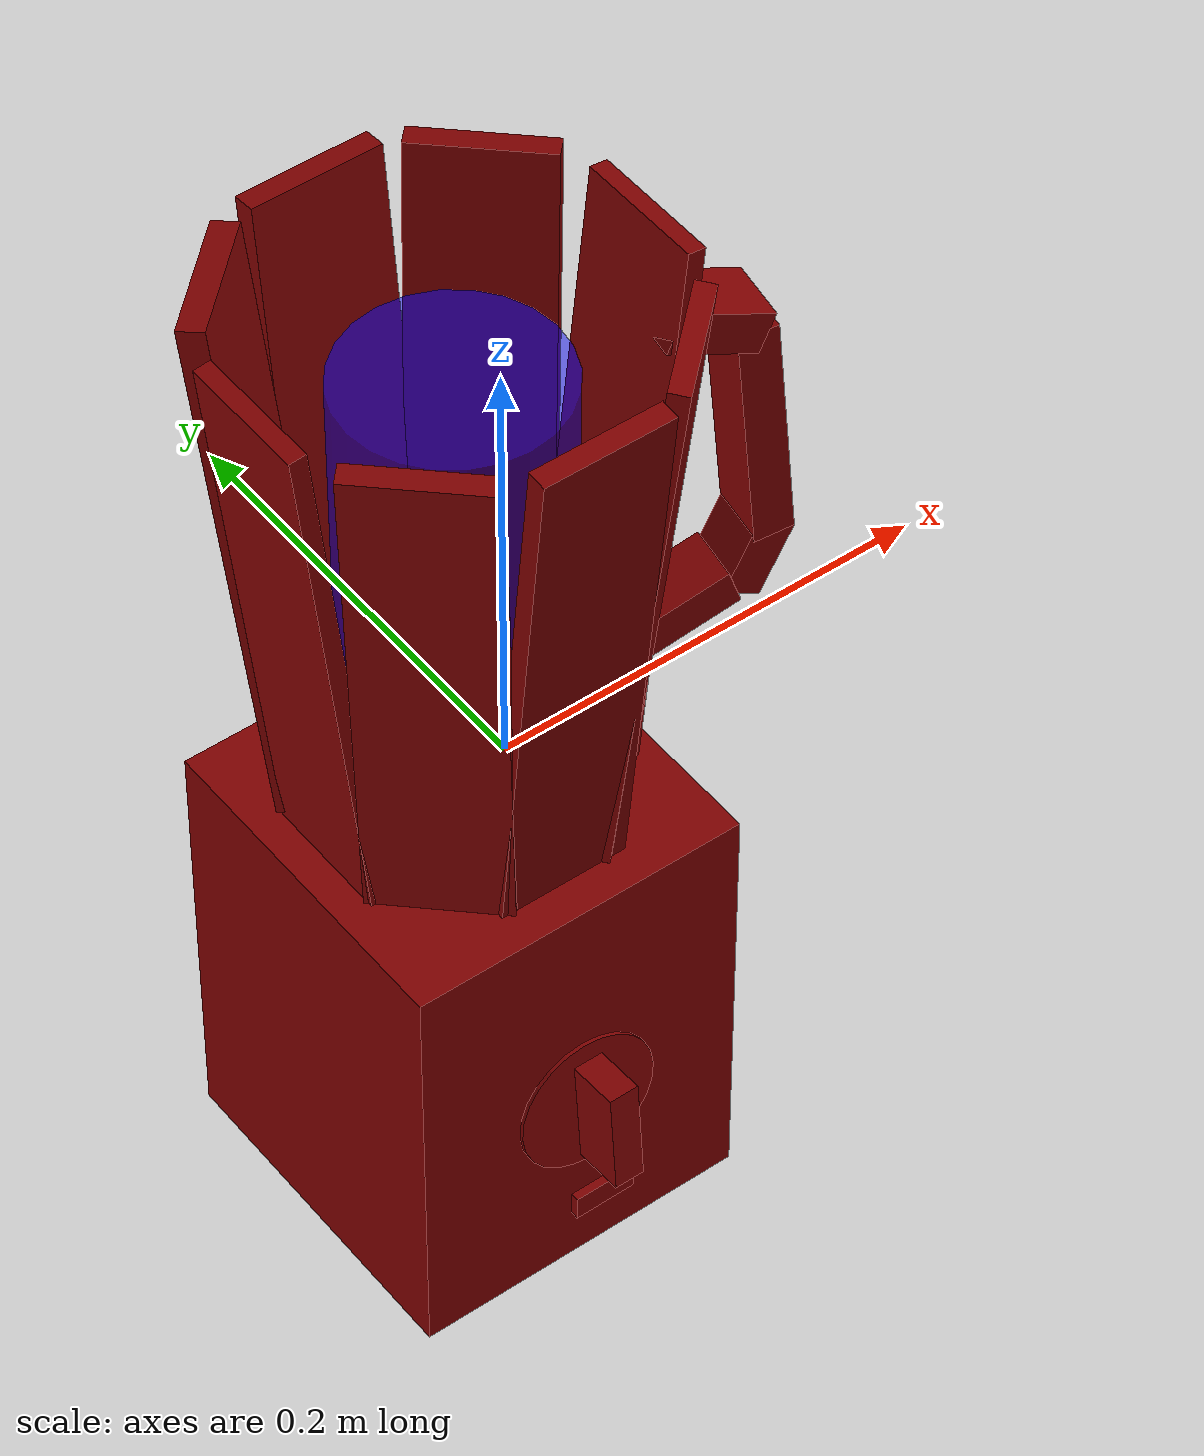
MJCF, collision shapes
<?xml version='1.0' encoding='UTF-8'?>
<mujoco model="model">
  <option timestep="0.002" gravity="0.0 0.0 -9.81"/>
  <compiler angle="radian"/>
  <asset>
    <mesh file="visuals/blade.obj" name="blade_vis"/>
    <mesh file="visuals/Body001.obj" name="Body001_vis"/>
    <mesh file="visuals/knob_speed.obj" name="knob_speed_vis"/>
    <mesh file="visuals/pitcher.obj" name="pitcher_vis"/>
    <mesh file="visuals/pitcher_main.obj" name="pitcher_main_vis"/>
    <mesh file="visuals/power_button.obj" name="power_button_vis"/>
    <texture file="visuals/T_BC001.png" name="Body001_material" type="2d"/>
    <material name="Body001_material" rgba="1 1 1 1.0" texture="Body001_material" shininess="0.4472135901451111" specular="0.3103448502657381"/>
    <texture file="visuals/T_BC001.png" name="knob_speed_material" type="2d"/>
    <material name="knob_speed_material" rgba="1 1 1 1.0" texture="knob_speed_material" shininess="0.4472135901451111" specular="0.3103448502657381"/>
    <texture file="visuals/T_BC001.png" name="pitcher_material" type="2d"/>
    <material name="pitcher_material" rgba="1 1 1 1.0" texture="pitcher_material" shininess="0.4472135901451111" specular="0.3103448502657381"/>
    <texture file="visuals/T_BC001.png" name="blade_material" type="2d"/>
    <material name="blade_material" rgba="1 1 1 1.0" texture="blade_material" shininess="0.4472135901451111" specular="0.3103448502657381"/>
    <material name="pitcher_main_material" rgba="0.0737990140914917 0.0737990140914917 0.0737990140914917 0.699999988079071" shininess="0.5" specular="0.33333333333333337"/>
    <texture file="visuals/T_BC001.png" name="power_button_material" type="2d"/>
    <material name="power_button_material" rgba="1 1 1 1.0" texture="power_button_material" shininess="0.4472135901451111" specular="0.3103448502657381"/>
  </asset>
  <default>
    <default class="visual">
      <geom conaffinity="0" contype="0" group="1" type="mesh"/>
    </default>
    <default class="collision">
      <geom group="0" rgba="0.5 0 0 0.5" density="1000" solref="0.004 1" solimp="0.998 0.998 0.001"/>
    </default>
    <default class="spawn">
      <geom group="0" rgba="1 1 1 0.5" contype="0" conaffinity="0"/>
      <site group="0" rgba="1 1 1 0.5"/>
    </default>
    <default class="region">
      <geom group="1" conaffinity="0" contype="0" rgba="0 1 0 0" mass="0"/>
    </default>
  </default>
  <worldbody>
    <body>
      <body name="object">
        <geom mesh="Body001_vis" type="mesh" solimp="0.998 0.998 0.001" solref="0.001 1" friction="0.95 0.3 0.1" class="visual" material="Body001_material"/>
        <geom type="box" pos="-0.01514570 0.00879685 -0.12774659" size="0.07678362727165222 0.07831722497940063 0.1044483631849289" quat="1.0 0.0 0.0 0.0" class="collision"/>
        <body name="knob_speed">
          <joint axis="0.0 0.9961947202682495 -0.08715574443340302" pos="-0.01608700 -0.08145923 -0.13033501" limited="true" name="knob_speed_joint" range="0.0 3.141592653589793" type="hinge" damping="0.05" armature="0.001"/>
          <geom mesh="knob_speed_vis" type="mesh" solimp="0.998 0.998 0.001" solref="0.001 1" friction="0.95 0.3 0.1" class="visual" material="knob_speed_material"/>
          <geom type="cylinder" pos="-0.01616849 -0.07443391 -0.13116504" size="0.03245633468031883 0.0008922007982619107" quat="0.7324968576431274 0.6807703971862793 0.0 0.0" class="collision"/>
          <geom class="collision" type="box" pos="-0.01613558 -0.08875910 -0.12981300" size="0.006805765442550182 0.01165817677974701 0.024993430823087692" quat="0.999072253704071 -0.04306580126285553 -1.2950475414275076e-10 3.0043463272733106e-09" name="knob_speed_main"/>
        </body>
        <body name="pitcher">
          <geom mesh="pitcher_vis" type="mesh" solimp="0.998 0.998 0.001" solref="0.001 1" friction="0.95 0.3 0.1" class="visual" material="pitcher_material"/>
          <geom class="collision" type="box" pos="0.10735267 -0.01187913 0.12756005" size="0.008810347877442837 0.01337229460477829 0.05532687529921532" quat="0.9955431222915649 -0.0037091949488967657 -0.0444367341697216 -0.08309933543205261" name="pitcher_handle_0"/>
          <geom class="collision" type="box" pos="0.07499458 -0.00637261 0.04280140" size="0.022820470854640007 0.012766306288540363 0.008864781819283962" quat="0.9837000966072083 -0.013307042419910431 -0.15942050516605377 -0.08211079239845276" name="pitcher_handle_1"/>
          <geom class="collision" type="box" pos="0.08690926 -0.00843251 0.18982184" size="0.021085254848003387 0.013875750824809074 0.009293685667216778" quat="0.9774189591407776 0.016214268282055855 0.19424955546855927 -0.08158648014068604" name="pitcher_handle_2"/>
          <geom type="cylinder" pos="-0.01625181 0.00846700 -0.01524351" size="0.012912442907691002 0.004275952931493521" quat="1.0 0.0 0.0 0.0" class="collision"/>
          <geom class="collision" type="box" pos="0.10627019 -0.01163048 0.06046877" size="0.01726957969367504 0.012766306288540363 0.008864779956638813" quat="0.8413264155387878 -0.0445810966193676 -0.5340885519981384 -0.07022666186094284" name="pitcher_handle_3"/>
          <body name="blade">
            <geom mesh="blade_vis" type="mesh" solimp="0.998 0.998 0.001" solref="0.001 1" friction="0.95 0.3 0.1" class="visual" material="blade_material"/>
            <geom type="cylinder" pos="-0.01625181 0.00846700 -0.00198914" size="0.010120311751961708 0.006583241745829582" quat="1.0 0.0 0.0 0.0" class="collision"/>
          </body>
          <body name="pitcher_main">
            <geom class="region" type="cylinder" size="0.04703454300761223 0.09612751007080078" pos="-0.01505019 0.00881461 0.10539652" rgba="0 0 1 0.5" name="reg_int"/>
            <geom mesh="pitcher_main_vis" type="mesh" solimp="0.998 0.998 0.001" solref="0.001 1" friction="0.95 0.3 0.1" class="visual" material="pitcher_main_material"/>
            <geom type="box" pos="-0.01369678 0.08454736 0.11077496" size="0.029443033039569855 0.005123327020555735 0.1273406445980072" quat="0.9985349774360657 -0.054110053926706314 -0.0 0.0" class="collision"/>
            <geom type="box" pos="-0.01369678 -0.06541527 0.10958939" size="0.029443033039569855 0.0045418147929012775 0.12841808795928955" quat="0.9985349774360657 0.05411006137728691 0.0 0.0" class="collision"/>
            <geom type="box" pos="-0.08937243 0.00839083 0.10954997" size="0.029443033039569855 0.003922209609299898 0.12844577431678772" quat="0.7060708999633789 0.038261592388153076 -0.03826158866286278 -0.7060708403587341" class="collision"/>
            <geom type="box" pos="0.05910120 0.00839084 0.10970971" size="0.029443033039569855 0.003990079741925001 0.12832491099834442" quat="0.7060708999633789 -0.03826158493757248 0.03826158493757248 -0.7060708403587341" class="collision"/>
            <geom type="box" pos="0.03681379 0.06312978 0.10977786" size="0.029443033039569855 0.005239774938672781 0.1283605694770813" quat="0.9271512031555176 -0.050241824239492416 0.020091267302632332 -0.37075966596603394" class="collision"/>
            <geom type="box" pos="-0.06582158 -0.04459222 0.10960838" size="0.029443033039569855 0.004761549644172192 0.12841331958770752" quat="0.9271512031555176 0.05024183169007301 -0.02009126916527748 -0.37075966596603394" class="collision"/>
            <geom type="box" pos="0.03456071 -0.04548651 0.10955570" size="0.029443034902215004 0.004448140971362591 0.12839438021183014" quat="0.9296003580093384 0.05037453770637512 0.019756143912672997 0.36457544565200806" class="collision"/>
            <geom type="box" pos="-0.06607580 0.06412538 0.11124434" size="0.029443034902215004 0.005722026340663433 0.1269514411687851" quat="0.9296003580093384 -0.050374530255794525 -0.019756142050027847 0.36457544565200806" class="collision"/>
            <geom type="cylinder" pos="-0.01625181 0.00846700 -0.01809709" size="0.057328250259160995 0.0008909525349736214" quat="1.0 0.0 0.0 0.0" class="collision"/>
          </body>
        </body>
        <body name="power_button">
          <joint axis="0.0 1.0 0.0" pos="-0.01380459 -0.07785794 -0.18396318" limited="true" name="power_button_joint" range="0.0 0.004" type="slide" damping="1" frictionloss="1" armature=".01" stiffness="0.5" springref="-0.5"/>
          <geom mesh="power_button_vis" type="mesh" solimp="0.998 0.998 0.001" solref="0.001 1" friction="0.95 0.3 0.1" class="visual" material="power_button_material"/>
          <geom class="collision" type="box" pos="-0.01331331 -0.08128918 -0.18395984" size="0.014210645109415054 0.0018777154618874192 0.005925001576542854" quat="1.0 0.0 0.0 0.0" name="power_button_main"/>
        </body>
        <geom class="region" name="reg_main" type="box" pos="-0.020600004999999998 0.009352519999999996 -8.499999999689312e-08" size="0.10070000500000001 0.0943 0.23967158500000002"/>
      </body>
      <site rgba="0 1 0 0" size="0.005" pos="-0.013844 0.010204 0.231273" name="anchor_site"/>
    </body>
  </worldbody>
  <actuator>
    <motor name="knob_speed_joint_actuator" joint="knob_speed_joint" gear="10"/>
    <motor name="power_button_joint_actuator" joint="power_button_joint" gear="0.5"/>
  </actuator>
</mujoco>
